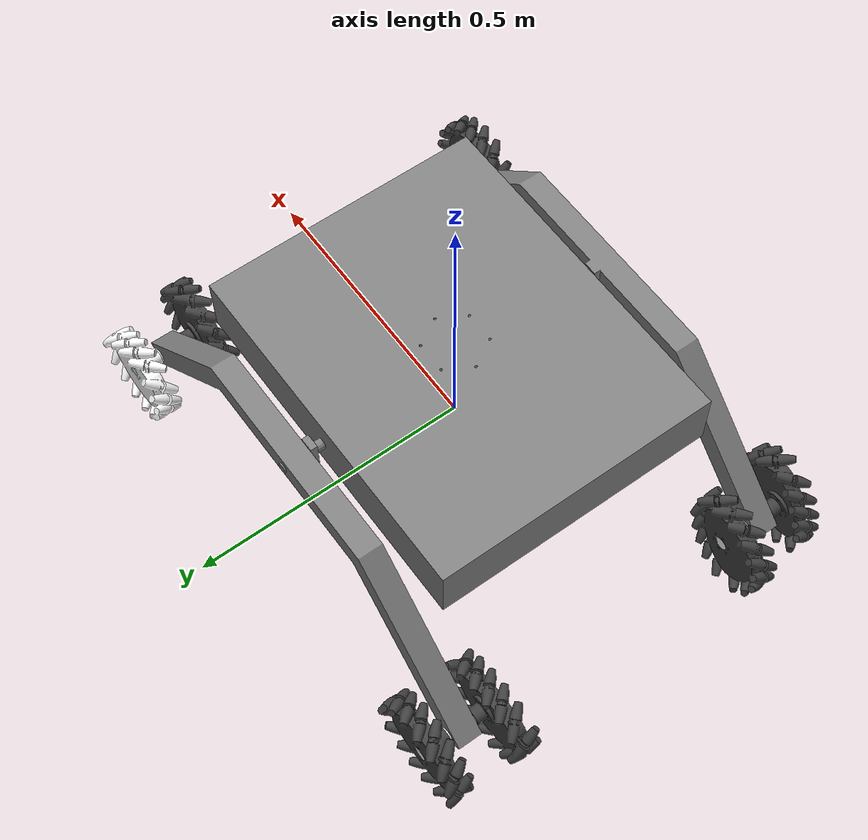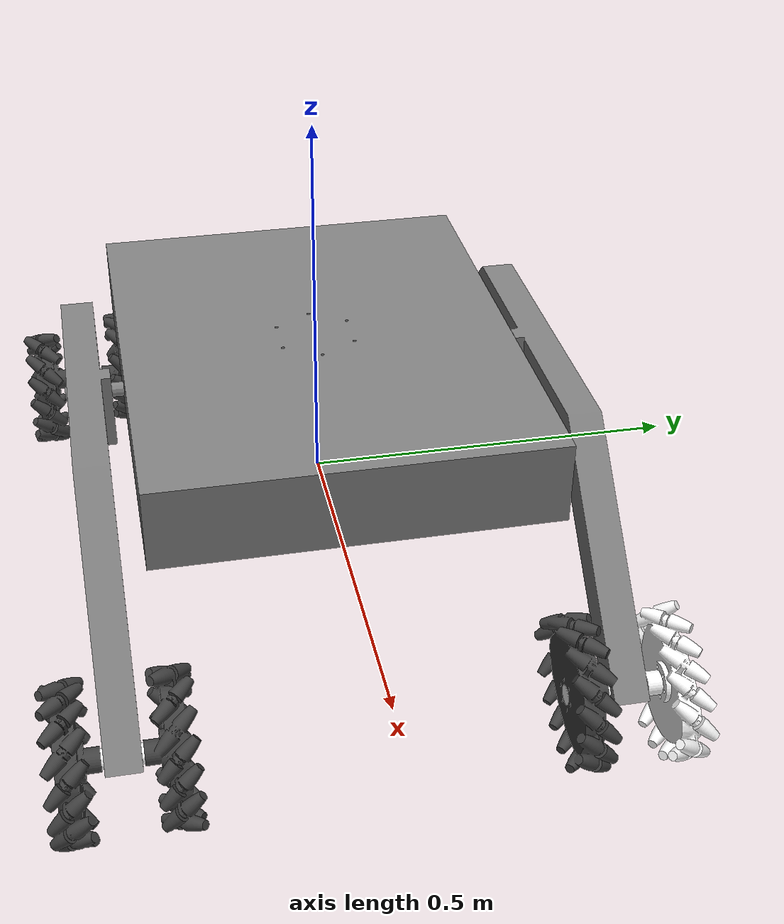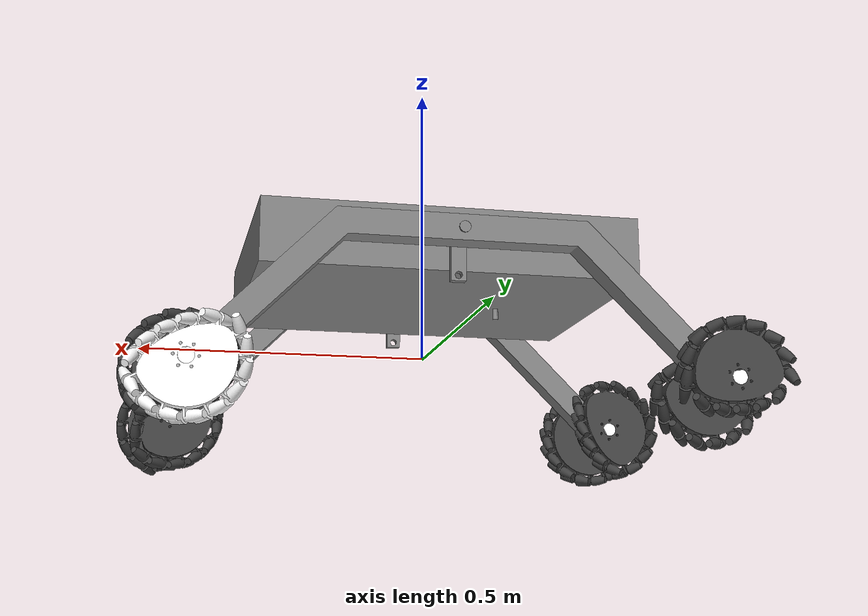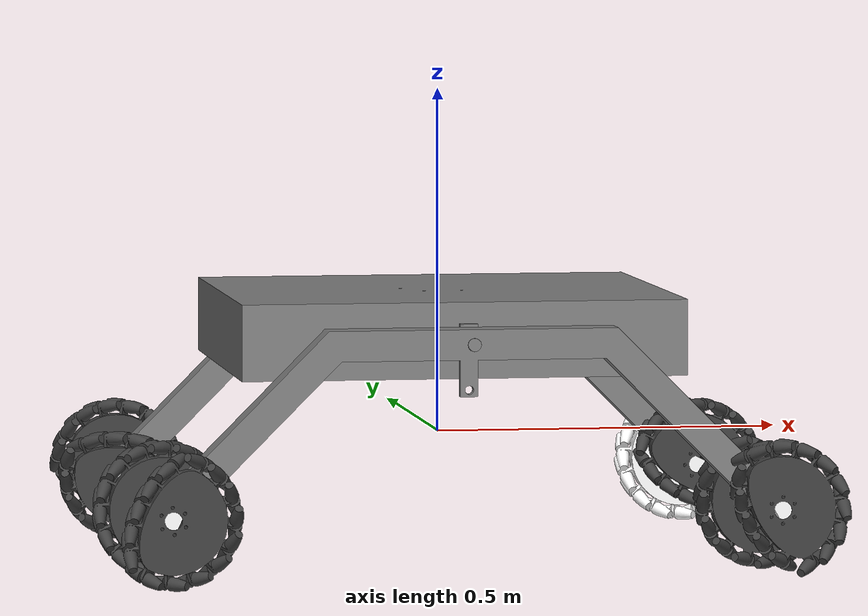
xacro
<?xml version="1.0"?>
<robot xmlns:xacro="http://www.ros.org/wiki/xacro" name="knight_rover_new">
  <link name="robot_base_link">
    <inertial>
      <origin
        xyz="-3.51409534725501E-05 2.02030762991075E-17 0.054452787160501"
        rpy="0 0 0" />
      <mass
        value="35.9333306293393" />
      <inertia
        ixx="0.829440467624282"
        ixy="-3.19664415872315E-17"
        ixz="-1.261122050565E-05"
        iyy="1.26474036562949"
        iyz="9.12630764099463E-18"
        izz="2.0232174193065" />
    </inertial>
    <visual>
      <origin
        xyz="0 0 0"
        rpy="0 0 0" />
      <geometry>
        <mesh
          filename="file:///home/imbatman/ros2_ws/src/knight_rover_1/knight_rover_new/meshes/robot_base_link.STL" />
      </geometry>
      <material
        name="">
        <color
          rgba="0.501960784313725 0.501960784313725 0.501960784313725 1" />
      </material>
    </visual>
    <collision>
      <origin
        xyz="0 0 0"
        rpy="0 0 0" />
      <geometry>
        <mesh
          filename="file:///home/imbatman/ros2_ws/src/knight_rover_1/knight_rover_new/meshes/robot_base_link.STL" />
      </geometry>
    </collision>
  </link>
  <link name="left_suspension">
    <inertial>
      <origin
        xyz="1.72685688207314E-16 -0.0768469466497054 -0.00596606384240272"
        rpy="0 0 0" />
      <mass
        value="2.09033981771279" />
      <inertia
        ixx="0.0143822425075524"
        ixy="2.13129130361425E-17"
        ixz="-3.55136708633844E-18"
        iyy="0.151071620854433"
        iyz="-3.98388809734623E-05"
        izz="0.164728757444313" />
    </inertial>
    <visual>
      <origin
        xyz="0 0 0"
        rpy="0 0 0" />
      <geometry>
        <mesh
          filename="file:///home/imbatman/ros2_ws/src/knight_rover_1/knight_rover_new/meshes/left_suspension.STL" />
      </geometry>
      <material
        name="">
        <color
          rgba="0.501960784313725 0.501960784313725 0.501960784313725 1" />
      </material>
    </visual>
    <collision>
      <origin
        xyz="0 0 0"
        rpy="0 0 0" />
      <geometry>
        <mesh
          filename="file:///home/imbatman/ros2_ws/src/knight_rover_1/knight_rover_new/meshes/left_suspension.STL" />
      </geometry>
    </collision>
  </link>
  <joint  name="left_suspension_joint"
    type="revolute">
    <origin
      xyz="-2.9695701971535E-05 0.301625 0.054456965"
      rpy="1.5707963267949 0 0" />
    <parent
      link="robot_base_link" />
    <child
      link="left_suspension" />
    <axis
      xyz="0 0 1" />
    <limit
      lower="-0.1722"
      upper="0.1722"
      effort="11"
      velocity="2" />
  </joint>
  <link name="F_shaft_LR">
    <inertial>
      <origin
        xyz="-0.000275564760709279 -0.000548784014590159 0"
        rpy="0 0 0" />
      <mass
        value="0.0732032651136589" />
      <inertia
        ixx="0.000144362575624441"
        ixy="1.94226191261808E-07"
        ixz="-2.41141585894578E-21"
        iyy="0.0001446518466667"
        iyz="1.85180087888106E-21"
        izz="5.64751116677257E-06" />
    </inertial>
    <visual>
      <origin
        xyz="0 0 0"
        rpy="0 0 0" />
      <geometry>
        <mesh
          filename="file:///home/imbatman/ros2_ws/src/knight_rover_1/knight_rover_new/meshes/F_shaft_LR.STL" />
      </geometry>
      <material
        name="">
        <color
          rgba="1 1 1 1" />
      </material>
    </visual>
    <collision>
      <origin
        xyz="0 0 0"
        rpy="0 0 0" />
      <geometry>
        <mesh
          filename="file:///home/imbatman/ros2_ws/src/knight_rover_1/knight_rover_new/meshes/F_shaft_LR.STL" />
      </geometry>
    </collision>
  </link>
  <joint  name="F_shaft_LR_joint"
    type="continuous">
    <origin
      xyz="0.433046617948688 -0.235688617948681 -0.00635000000000002"
      rpy="0 0 0" />
    <parent
      link="left_suspension" />
    <child
      link="F_shaft_LR" />
    <axis
      xyz="0 0 1" />
  </joint>
  <link name="FL_wheel_LR">
    <inertial>
      <origin
        xyz="-0.00728768342739827 -0.0146448321390538 0.00050848063236375"
        rpy="0 0 0" />
      <mass
        value="0.549396445319131" />
      <inertia
        ixx="0.000445171241559337"
        ixy="9.78659019529863E-05"
        ixz="-6.94813455862534E-07"
        iyy="0.000593200318687097"
        iyz="3.02640502246261E-07"
        izz="0.000936282884274775" />
    </inertial>
    <visual>
      <origin
        xyz="0 0 0"
        rpy="0 0 0" />
      <geometry>
        <mesh
          filename="file:///home/imbatman/ros2_ws/src/knight_rover_1/knight_rover_new/meshes/FL_wheel_LR.STL" />
      </geometry>
      <material
        name="">
        <color
          rgba="1 1 1 1" />
      </material>
    </visual>
    <collision>
      <origin
        xyz="0 0 0"
        rpy="0 0 0" />
      <geometry>
        <mesh
          filename="file:///home/imbatman/ros2_ws/src/knight_rover_1/knight_rover_new/meshes/FL_wheel_LR.STL" />
      </geometry>
    </collision>
  </link>
  <joint  name="FL_wheel_LR_joint"
    type="fixed">
    <origin
      xyz="0 0 -0.0635000000000001"
      rpy="0 0 0" />
    <parent
      link="F_shaft_LR" />
    <child
      link="FL_wheel_LR" />
    <axis
      xyz="0 0 0" />
  </joint>
  <link name="FR_wheel_LR">
    <inertial>
      <origin
        xyz="0.00740533402318116 0.0146161440808339 -0.000508480759078611"
        rpy="0 0 0" />
      <mass
        value="0.549396404481812" />
      <inertia
        ixx="0.000446634643970396"
        ixy="9.8954363392273E-05"
        ixz="6.92370335923828E-07"
        iyy="0.000591737101133644"
        iyz="-3.07507000713996E-07"
        izz="0.000936283087584822" />
    </inertial>
    <visual>
      <origin
        xyz="0 0 0"
        rpy="0 0 0" />
      <geometry>
        <mesh
          filename="file:///home/imbatman/ros2_ws/src/knight_rover_1/knight_rover_new/meshes/FR_wheel_LR.STL" />
      </geometry>
      <material
        name="">
        <color
          rgba="0.250980392156863 0.250980392156863 0.250980392156863 1" />
      </material>
    </visual>
    <collision>
      <origin
        xyz="0 0 0"
        rpy="0 0 0" />
      <geometry>
        <mesh
          filename="file:///home/imbatman/ros2_ws/src/knight_rover_1/knight_rover_new/meshes/FR_wheel_LR.STL" />
      </geometry>
    </collision>
  </link>
  <joint  name="FR_wheel_LR_joint"
    type="fixed">
    <origin
      xyz="0 0 0.0635"
      rpy="0 0 0" />
    <parent
      link="F_shaft_LR" />
    <child
      link="FR_wheel_LR" />
    <axis
      xyz="0 0 0" />
  </joint>
  <link name="B_shaft_LR">
    <inertial>
      <origin
        xyz="-0.000102000774275024 -0.000605554022413884 -5.55111512312578E-17"
        rpy="0 0 0" />
      <mass
        value="0.0732032651136589" />
      <inertia
        ixx="0.000144278410024616"
        ixy="7.93302867395647E-08"
        ixz="-1.70773371535388E-20"
        iyy="0.000144736012266526"
        iyz="4.51423547668717E-21"
        izz="5.64751116677256E-06" />
    </inertial>
    <visual>
      <origin
        xyz="0 0 0"
        rpy="0 0 0" />
      <geometry>
        <mesh
          filename="file:///home/imbatman/ros2_ws/src/knight_rover_1/knight_rover_new/meshes/B_shaft_LR.STL" />
      </geometry>
      <material
        name="">
        <color
          rgba="1 1 1 1" />
      </material>
    </visual>
    <collision>
      <origin
        xyz="0 0 0"
        rpy="0 0 0" />
      <geometry>
        <mesh
          filename="file:///home/imbatman/ros2_ws/src/knight_rover_1/knight_rover_new/meshes/B_shaft_LR.STL" />
      </geometry>
    </collision>
  </link>
  <joint  name="B_shaft_LR_joint"
    type="continuous">
    <origin
      xyz="-0.433046617948688 -0.235688617948681 -0.00635000000000002"
      rpy="0 0 0" />
    <parent
      link="left_suspension" />
    <child
      link="B_shaft_LR" />
    <axis
      xyz="0 0 1" />
  </joint>
  <link name="BL_wheel_LR">
    <inertial>
      <origin
        xyz="0.00266350646928726 0.0161679555464226 0.000510210330815108"
        rpy="0 0 0" />
      <mass
        value="0.547534762417823" />
      <inertia
        ixx="0.000399445213010371"
        ixy="3.90952412727286E-05"
        ixz="-7.49471063720292E-07"
        iyy="0.000630414635441886"
        iyz="8.43333194813395E-08"
        izz="0.000927863923073197" />
    </inertial>
    <visual>
      <origin
        xyz="0 0 0"
        rpy="0 0 0" />
      <geometry>
        <mesh
          filename="file:///home/imbatman/ros2_ws/src/knight_rover_1/knight_rover_new/meshes/BL_wheel_LR.STL" />
      </geometry>
      <material
        name="">
        <color
          rgba="0.250980392156863 0.250980392156863 0.250980392156863 1" />
      </material>
    </visual>
    <collision>
      <origin
        xyz="0 0 0"
        rpy="0 0 0" />
      <geometry>
        <mesh
          filename="file:///home/imbatman/ros2_ws/src/knight_rover_1/knight_rover_new/meshes/BL_wheel_LR.STL" />
      </geometry>
    </collision>
  </link>
  <joint  name="BL_wheel_LR_joint"
    type="fixed">
    <origin
      xyz="0 0 -0.0635"
      rpy="0 0 0" />
    <parent
      link="B_shaft_LR" />
    <child
      link="BL_wheel_LR" />
    <axis
      xyz="0 0 0" />
  </joint>
  <link name="BR_wheel_LR">
    <inertial>
      <origin
        xyz="-0.00277533864218887 -0.0161213368308621 -0.000510210708511649"
        rpy="0 0 0" />
      <mass
        value="0.54753441534668" />
      <inertia
        ixx="0.000400031841409848"
        ixy="4.07852011130894E-05"
        ixz="7.48566841143591E-07"
        iyy="0.000629826877269507"
        iyz="-8.96933677215981E-08"
        izz="0.00092786281766356" />
    </inertial>
    <visual>
      <origin
        xyz="0 0 0"
        rpy="0 0 0" />
      <geometry>
        <mesh
          filename="file:///home/imbatman/ros2_ws/src/knight_rover_1/knight_rover_new/meshes/BR_wheel_LR.STL" />
      </geometry>
      <material
        name="">
        <color
          rgba="0.250980392156863 0.250980392156863 0.250980392156863 1" />
      </material>
    </visual>
    <collision>
      <origin
        xyz="0 0 0"
        rpy="0 0 0" />
      <geometry>
        <mesh
          filename="file:///home/imbatman/ros2_ws/src/knight_rover_1/knight_rover_new/meshes/BR_wheel_LR.STL" />
      </geometry>
    </collision>
  </link>
  <joint  name="BR_wheel_LR_joint"
    type="fixed">
    <origin
      xyz="0 0 0.0635"
      rpy="0 0 0" />
    <parent
      link="B_shaft_LR" />
    <child
      link="BR_wheel_LR" />
    <axis
      xyz="0 0 0" />
  </joint>
  <link name="right_suspension">
    <inertial>
      <origin
        xyz="5.94858130497897E-17 -0.0768469466497054 0.00596606384240278"
        rpy="0 0 0" />
      <mass
        value="2.09033981771279" />
      <inertia
        ixx="0.0143822425075524"
        ixy="9.36229739103627E-19"
        ixz="-3.76479445289107E-19"
        iyy="0.151071620854433"
        iyz="3.98388809734629E-05"
        izz="0.164728757444313" />
    </inertial>
    <visual>
      <origin
        xyz="0 0 0"
        rpy="0 0 0" />
      <geometry>
        <mesh
          filename="file:///home/imbatman/ros2_ws/src/knight_rover_1/knight_rover_new/meshes/right_suspension.STL" />
      </geometry>
      <material
        name="">
        <color
          rgba="0.501960784313725 0.501960784313725 0.501960784313725 1" />
      </material>
    </visual>
    <collision>
      <origin
        xyz="0 0 0"
        rpy="0 0 0" />
      <geometry>
        <mesh
          filename="file:///home/imbatman/ros2_ws/src/knight_rover_1/knight_rover_new/meshes/right_suspension.STL" />
      </geometry>
    </collision>
  </link>
  <joint  name="right_suspension_joint"
    type="revolute">
    <origin
      xyz="-2.96957019715361E-05 -0.301625 0.054456965"
      rpy="1.5707963267949 0 0" />
    <parent
      link="robot_base_link" />
    <child
      link="right_suspension" />
    <axis
      xyz="0 0 -1" />
    <limit
      lower="-0.1722"
      upper="0.1722"
      effort="11"
      velocity="2" />
    <mimic
      joint="left_suspension_joint"
      multiplier="-1"
      offset="0" />
  </joint>
  <link name="FR_shaft_RR">
    <inertial>
      <origin
        xyz="0.000533453219315305 0.0003041833243565 0"
        rpy="0 0 0" />
      <mass
        value="0.0732032651136589" />
      <inertia
        ixx="0.000144630537335569"
        ixy="2.08408008974911E-07"
        ixz="-1.51404603547328E-20"
        iyy="0.000144383884955572"
        iyz="-1.06677612253128E-20"
        izz="5.64751116677257E-06" />
    </inertial>
    <visual>
      <origin
        xyz="0 0 0"
        rpy="0 0 0" />
      <geometry>
        <mesh
          filename="file:///home/imbatman/ros2_ws/src/knight_rover_1/knight_rover_new/meshes/FR_shaft_RR.STL" />
      </geometry>
      <material
        name="">
        <color
          rgba="1 1 1 1" />
      </material>
    </visual>
    <collision>
      <origin
        xyz="0 0 0"
        rpy="0 0 0" />
      <geometry>
        <mesh
          filename="file:///home/imbatman/ros2_ws/src/knight_rover_1/knight_rover_new/meshes/FR_shaft_RR.STL" />
      </geometry>
    </collision>
  </link>
  <joint  name="FR_shaft_RR_joint"
    type="continuous">
    <origin
      xyz="0.433046617948687 -0.235688617948681 0.00635000000000002"
      rpy="0 0 0" />
    <parent
      link="right_suspension" />
    <child
      link="FR_shaft_RR" />
    <axis
      xyz="0 0 -1" />
  </joint>
  <link name="FR_wheel_RR">
    <inertial>
      <origin
        xyz="0.0142396465975015 0.00805182697412571 -0.000510211445635955"
        rpy="0 0 0" />
      <mass
        value="0.547533595882271" />
      <inertia
        ixx="0.000577783923555976"
        ixy="0.000104467055038999"
        ixz="-4.04206874654229E-07"
        iyy="0.000452071101419828"
        iyz="6.36410608409607E-07"
        izz="0.000927859172549869" />
    </inertial>
    <visual>
      <origin
        xyz="0 0 0"
        rpy="0 0 0" />
      <geometry>
        <mesh
          filename="file:///home/imbatman/ros2_ws/src/knight_rover_1/knight_rover_new/meshes/FR_wheel_RR.STL" />
      </geometry>
      <material
        name="">
        <color
          rgba="0.250980392156863 0.250980392156863 0.250980392156863 1" />
      </material>
    </visual>
    <collision>
      <origin
        xyz="0 0 0"
        rpy="0 0 0" />
      <geometry>
        <mesh
          filename="file:///home/imbatman/ros2_ws/src/knight_rover_1/knight_rover_new/meshes/FR_wheel_RR.STL" />
      </geometry>
    </collision>
  </link>
  <joint  name="FR_wheel_RR_joint"
    type="fixed">
    <origin
      xyz="0 0 0.0635"
      rpy="0 0 0" />
    <parent
      link="FR_shaft_RR" />
    <child
      link="FR_wheel_RR" />
    <axis
      xyz="0 0 0" />
  </joint>
  <link name="FL_wheel_RR">
    <inertial>
      <origin
        xyz="-0.0142050302316768 -0.00816775289066476 0.000510211625356249"
        rpy="0 0 0" />
      <mass
        value="0.547533424682197" />
      <inertia
        ixx="0.000576245395570839"
        ixy="0.000105376555008215"
        ixz="4.0892733889422E-07"
        iyy="0.00045360914424117"
        iyz="-6.33718153793749E-07"
        izz="0.000927858700994071" />
    </inertial>
    <visual>
      <origin
        xyz="0 0 0"
        rpy="0 0 0" />
      <geometry>
        <mesh
          filename="file:///home/imbatman/ros2_ws/src/knight_rover_1/knight_rover_new/meshes/FL_wheel_RR.STL" />
      </geometry>
      <material
        name="">
        <color
          rgba="0.250980392156863 0.250980392156863 0.250980392156863 1" />
      </material>
    </visual>
    <collision>
      <origin
        xyz="0 0 0"
        rpy="0 0 0" />
      <geometry>
        <mesh
          filename="file:///home/imbatman/ros2_ws/src/knight_rover_1/knight_rover_new/meshes/FL_wheel_RR.STL" />
      </geometry>
    </collision>
  </link>
  <joint  name="FL_wheel_RR_joint"
    type="fixed">
    <origin
      xyz="0 0 -0.0634999999999999"
      rpy="0 0 0" />
    <parent
      link="FR_shaft_RR" />
    <child
      link="FL_wheel_RR" />
    <axis
      xyz="0 0 0" />
  </joint>
  <link name="BR_shaft_RR">
    <inertial>
      <origin
        xyz="-0.00055158733402455 0.000269909697784398 1.11022302462516E-16"
        rpy="0 0 0" />
      <mass
        value="0.0732032651136588" />
      <inertia
        ixx="0.000144655808484728"
        ixy="-1.91212128642016E-07"
        ixz="-3.56423135935016E-22"
        iyy="0.000144358613806413"
        iyz="-8.23017532900926E-22"
        izz="5.64751116677256E-06" />
    </inertial>
    <visual>
      <origin
        xyz="0 0 0"
        rpy="0 0 0" />
      <geometry>
        <mesh
          filename="file:///home/imbatman/ros2_ws/src/knight_rover_1/knight_rover_new/meshes/BR_shaft_RR.STL" />
      </geometry>
      <material
        name="">
        <color
          rgba="1 1 1 1" />
      </material>
    </visual>
    <collision>
      <origin
        xyz="0 0 0"
        rpy="0 0 0" />
      <geometry>
        <mesh
          filename="file:///home/imbatman/ros2_ws/src/knight_rover_1/knight_rover_new/meshes/BR_shaft_RR.STL" />
      </geometry>
    </collision>
  </link>
  <joint  name="BR_shaft_RR_joint"
    type="continuous">
    <origin
      xyz="-0.433046617948688 -0.235688617948681 0.00635000000000002"
      rpy="0 0 0" />
    <parent
      link="right_suspension" />
    <child
      link="BR_shaft_RR" />
    <axis
      xyz="0 0 -1" />
  </joint>
  <link name="BL_wheel_RR">
    <inertial>
      <origin
        xyz="-0.0147189689674223 0.00713677642674698 0.000508480579083342"
        rpy="0 0 0" />
      <mass
        value="0.54939649950203" />
      <inertia
        ixx="0.000595196553459929"
        ixy="-9.63239653984878E-05"
        ixz="2.95483114421503E-07"
        iyy="0.00044317521459507"
        iyz="6.97887531231998E-07"
        izz="0.000936283088752324" />
    </inertial>
    <visual>
      <origin
        xyz="0 0 0"
        rpy="0 0 0" />
      <geometry>
        <mesh
          filename="file:///home/imbatman/ros2_ws/src/knight_rover_1/knight_rover_new/meshes/BL_wheel_RR.STL" />
      </geometry>
      <material
        name="">
        <color
          rgba="0.250980392156863 0.250980392156863 0.250980392156863 1" />
      </material>
    </visual>
    <collision>
      <origin
        xyz="0 0 0"
        rpy="0 0 0" />
      <geometry>
        <mesh
          filename="file:///home/imbatman/ros2_ws/src/knight_rover_1/knight_rover_new/meshes/BL_wheel_RR.STL" />
      </geometry>
    </collision>
  </link>
  <joint  name="BL_wheel_RR_joint"
    type="fixed">
    <origin
      xyz="0 0 -0.0635"
      rpy="0 0 0" />
    <parent
      link="BR_shaft_RR" />
    <child
      link="BL_wheel_RR" />
    <axis
      xyz="0 0 0" />
  </joint>
  <link name="BR_wheel_RR">
    <inertial>
      <origin
        xyz="0.0146914842574465 -0.00725471731387628 -0.000508480710717518"
        rpy="0 0 0" />
      <mass
        value="0.549396458332006" />
      <inertia
        ixx="0.000593755941394788"
        ixy="-9.74422821912464E-05"
        ixz="-3.00374468849649E-07"
        iyy="0.00044461602097348"
        iyz="-6.95494593025691E-07"
        izz="0.000936283302375973" />
    </inertial>
    <visual>
      <origin
        xyz="0 0 0"
        rpy="0 0 0" />
      <geometry>
        <mesh
          filename="file:///home/imbatman/ros2_ws/src/knight_rover_1/knight_rover_new/meshes/BR_wheel_RR.STL" />
      </geometry>
      <material
        name="">
        <color
          rgba="0.250980392156863 0.250980392156863 0.250980392156863 1" />
      </material>
    </visual>
    <collision>
      <origin
        xyz="0 0 0"
        rpy="0 0 0" />
      <geometry>
        <mesh
          filename="file:///home/imbatman/ros2_ws/src/knight_rover_1/knight_rover_new/meshes/BR_wheel_RR.STL" />
      </geometry>
    </collision>
  </link>
  <joint  name="BR_wheel_RR_joint"
    type="fixed">
    <origin
      xyz="0 0 0.0635000000000001"
      rpy="0 0 0" />
    <parent
      link="BR_shaft_RR" />
    <child
      link="BR_wheel_RR" />
    <axis
      xyz="0 0 0" />
  </joint>

  <link name="base_footprint"/>
  <link name="odom"/>

  <joint name="base_joint" type="fixed">
    <parent link="base_footprint"/>
    <child link="robot_base_link"/>
    <origin xyz=" 0 0 0.1" rpy="0 0 0 "/>
  </joint>

  <joint name="odom_joint" type="fixed">
    <parent link="odom"/>
    <child link="base_footprint"/>
    <origin xyz=" 0 0 0" rpy="0 0 0 "/>
  </joint>

</robot>
